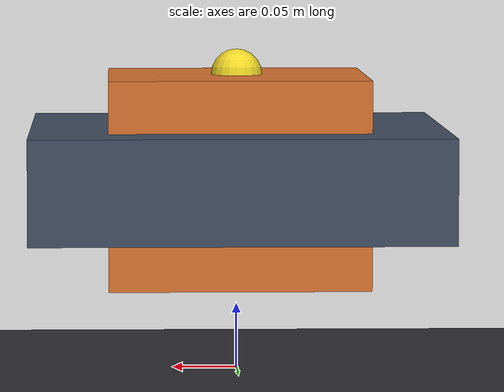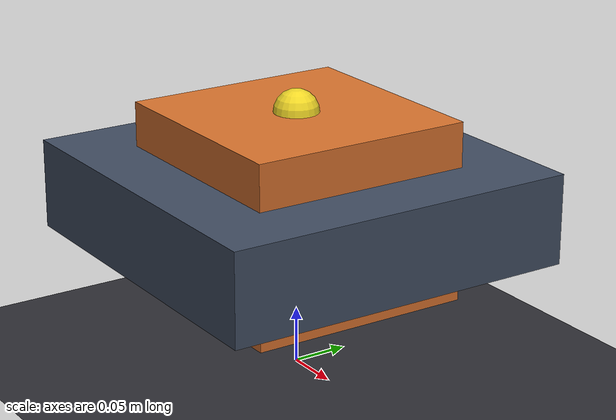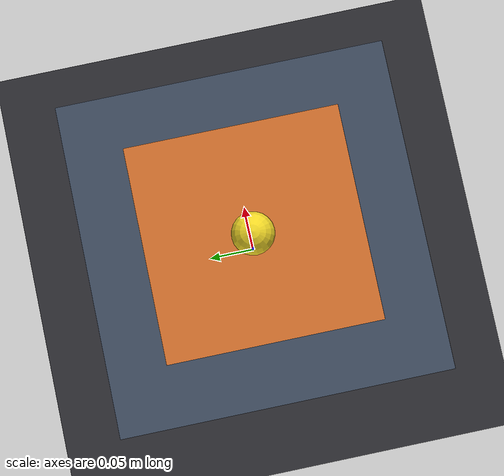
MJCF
<mujoco model="underpowered_payload_lift">
  <compiler angle="radian" autolimits="true"/>
  <option timestep="0.002" gravity="0 0 -9.81" integrator="implicitfast"/>
  <worldbody>
    <geom name="floor" type="plane" size="2 2 0.05" rgba="0.18 0.18 0.20 1"/>
    <body name="lift_frame" pos="0 0 0.15">
      <geom name="frame" type="box" size="0.16 0.16 0.04" contype="0" conaffinity="0" rgba="0.25 0.30 0.38 1"/>
      <body name="payload">
        <joint name="payload_slide" type="slide" axis="0 0 1" range="0 0.35" damping="100"/>
        <geom name="payload_geom" type="box" size="0.10 0.10 0.08" mass="2.0" rgba="0.85 0.45 0.18 1"/>
        <site name="payload_site" pos="0 0 0.08" size="0.02" rgba="0.95 0.85 0.15 1"/>
      </body>
    </body>
  </worldbody>
  <actuator>
    <position name="lift_servo" joint="payload_slide" kp="1000" ctrlrange="0 0.35" forcerange="-10 10"/>
  </actuator>
</mujoco>
